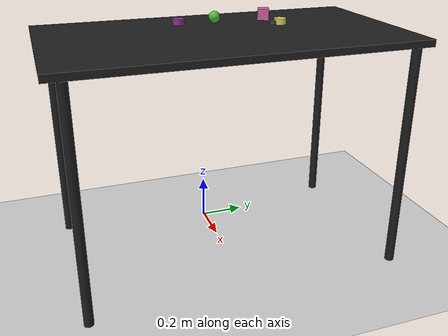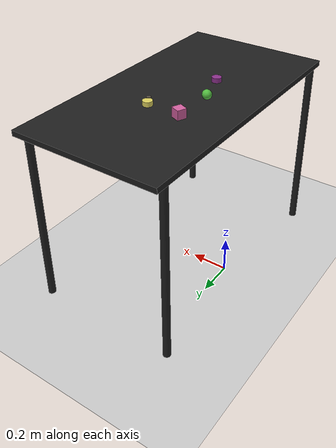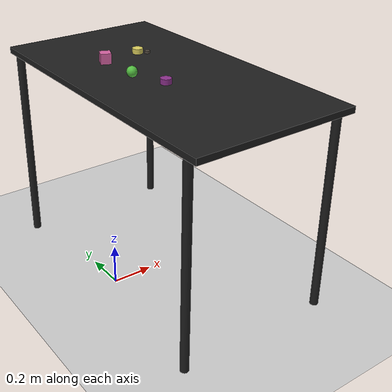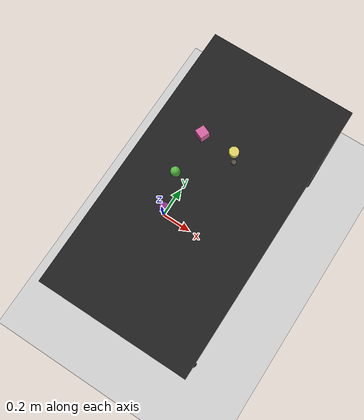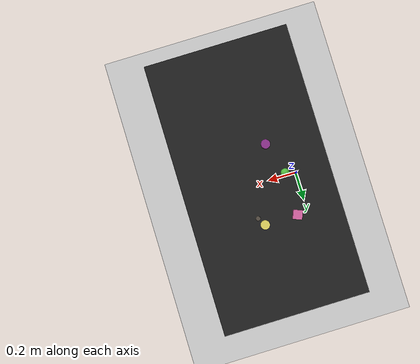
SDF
<?xml version="1.0" ?>
<sdf version="1.6">
  <world name="arm_world">
    <plugin filename="gz-sim-physics-system" name="gz::sim::systems::Physics">
      <engine>
        <filename>libgz-physics-bullet-featherstone-plugin.so</filename>
      </engine>
    </plugin>
    <plugin filename="gz-sim-user-commands-system" name="gz::sim::systems::UserCommands"/>
    <plugin filename="gz-sim-scene-broadcaster-system" name="gz::sim::systems::SceneBroadcaster"/>
    <plugin filename="gz-sim-sensors-system" name="gz::sim::systems::Sensors">
      <render_engine>ogre2</render_engine>
    </plugin>
    <gravity>0.0 0.0 -9.8</gravity>
    <scene>
      <shadows>false</shadows>
    </scene>
    <gui>
      <camera name="user_camera">
        <pose>0.75 -0.75 1.4 0 0.29 2.21</pose>
      </camera>
    </gui>
    <include>
      <uri>https://fuel.gazebosim.org/1.0/OpenRobotics/models/Sun</uri>
    </include>
    <model name="table">
      <static>true</static>
      <include>
        <uri>model://table</uri>
      </include>
      <pose>0.29 0 0 0 0 1.5708</pose>
    </model>
    <model name="ground_plane">
      <static>true</static>
      <link name="link">
        <collision name="collision">
          <geometry>
            <plane>
              <normal>0 0 1</normal>
            </plane>
          </geometry>
          <surface>
            <friction>
              <ode>
                <mu>1.0</mu>
                <mu2>1.0</mu2>
              </ode>
            </friction>
          </surface>
        </collision>
        <visual name="visual">
          <geometry>
            <plane>
              <normal>0 0 1</normal>
              <size>100 100</size>
            </plane>
          </geometry>
          <material>
            <ambient>0.8 0.8 0.8 1</ambient>
            <diffuse>0.8 0.8 0.8 1</diffuse>
            <specular>0.8 0.8 0.8 1</specular>
          </material>
        </visual>
      </link>
    </model>
    <model name="cylinder_m_0">
      <pose>0.314 0.249 1.05 0 0 3.24</pose>
      <link name="cylinder_m_0_link">
        <inertial>
          <mass>0.05</mass>
          <inertia>
            <ixx>2.04e-7</ixx>
            <iyy>2.04e-7</iyy>
            <izz>3.9e-8</izz>
            <ixy>0</ixy>
            <ixz>0</ixz>
            <iyz>0</iyz>
          </inertia>
        </inertial>
        <collision name="cylinder_m_0_collision">
          <geometry>
            <cylinder>
              <radius>0.025</radius>
              <length>0.025</length>
            </cylinder>
          </geometry>
          <surface>
            <friction>
              <ode>
                <mu>0.8</mu>
                <mu2>0.8</mu2>
                <fdir1>0 0 1</fdir1>
                <slip1>0.001</slip1>
                <slip2>0.001</slip2>
              </ode>
              <torsional>
                <coefficient>0.1</coefficient>
                <surface_radius>0.015</surface_radius>
                <use_patch_radius>true</use_patch_radius>
              </torsional>
            </friction>
            <contact>
              <ode>
                <kp>1e5</kp>
                <kd>10</kd>
                <max_vel>0.1</max_vel>
                <min_depth>0.001</min_depth>
                <soft_cfm>0.01</soft_cfm>
                <soft_erp>0.2</soft_erp>
              </ode>
            </contact>
            <bounce>
              <restitution_coefficient>0.2</restitution_coefficient>
              <threshold>0.01</threshold>
            </bounce>
          </surface>
        </collision>
        <visual name="cylinder_m_0_visual">
          <geometry>
            <cylinder>
              <radius>0.025</radius>
              <length>0.025</length>
            </cylinder>
          </geometry>
          <material>
            <ambient>0.87 0.82 0.37 1</ambient>
            <diffuse>0.87 0.82 0.37 1</diffuse>
          </material>
        </visual>
        <velocity_decay>
          <linear>1</linear>
          <angular>1</angular>
        </velocity_decay>
      </link>
    </model>
    <model name="cube_m_1">
      <pose>0.136 0.247 1.05 0 0 2.75</pose>
      <link name="cube_m_1_link">
        <inertial>
          <mass>0.05</mass>
          <inertia>
            <ixx>2.04e-7</ixx>
            <iyy>2.04e-7</iyy>
            <izz>3.9e-8</izz>
            <ixy>0</ixy>
            <ixz>0</ixz>
            <iyz>0</iyz>
          </inertia>
        </inertial>
        <collision name="cube_m_1_collision">
          <geometry>
            <box>
              <size>0.05 0.05 0.05</size>
            </box>
          </geometry>
          <surface>
            <friction>
              <ode>
                <mu>0.8</mu>
                <mu2>0.8</mu2>
                <fdir1>0 0 1</fdir1>
                <slip1>0.001</slip1>
                <slip2>0.001</slip2>
              </ode>
              <torsional>
                <coefficient>0.1</coefficient>
                <surface_radius>0.015</surface_radius>
                <use_patch_radius>true</use_patch_radius>
              </torsional>
            </friction>
            <contact>
              <ode>
                <kp>1e5</kp>
                <kd>10</kd>
                <max_vel>0.1</max_vel>
                <min_depth>0.001</min_depth>
                <soft_cfm>0.01</soft_cfm>
                <soft_erp>0.2</soft_erp>
              </ode>
            </contact>
            <bounce>
              <restitution_coefficient>0.2</restitution_coefficient>
              <threshold>0.01</threshold>
            </bounce>
          </surface>
        </collision>
        <visual name="cube_m_1_visual">
          <geometry>
            <box>
              <size>0.05 0.05 0.05</size>
            </box>
          </geometry>
          <material>
            <ambient>0.83 0.38 0.63 1</ambient>
            <diffuse>0.83 0.38 0.63 1</diffuse>
          </material>
        </visual>
        <velocity_decay>
          <linear>1</linear>
          <angular>1</angular>
        </velocity_decay>
      </link>
    </model>
    <model name="sphere_m_2">
      <pose>0.133 0.018 1.05 0 0 2.9</pose>
      <link name="sphere_m_2_link">
        <inertial>
          <mass>0.05</mass>
          <inertia>
            <ixx>2.04e-7</ixx>
            <iyy>2.04e-7</iyy>
            <izz>3.9e-8</izz>
            <ixy>0</ixy>
            <ixz>0</ixz>
            <iyz>0</iyz>
          </inertia>
        </inertial>
        <collision name="sphere_m_2_collision">
          <geometry>
            <sphere>
              <radius>0.025</radius>
            </sphere>
          </geometry>
          <surface>
            <friction>
              <ode>
                <mu>0.8</mu>
                <mu2>0.8</mu2>
                <fdir1>0 0 1</fdir1>
                <slip1>0.001</slip1>
                <slip2>0.001</slip2>
              </ode>
              <torsional>
                <coefficient>0.1</coefficient>
                <surface_radius>0.015</surface_radius>
                <use_patch_radius>true</use_patch_radius>
              </torsional>
            </friction>
            <contact>
              <ode>
                <kp>1e5</kp>
                <kd>10</kd>
                <max_vel>0.1</max_vel>
                <min_depth>0.001</min_depth>
                <soft_cfm>0.01</soft_cfm>
                <soft_erp>0.2</soft_erp>
              </ode>
            </contact>
            <bounce>
              <restitution_coefficient>0.2</restitution_coefficient>
              <threshold>0.01</threshold>
            </bounce>
          </surface>
        </collision>
        <visual name="sphere_m_2_visual">
          <geometry>
            <sphere>
              <radius>0.025</radius>
            </sphere>
          </geometry>
          <material>
            <ambient>0.32 0.73 0.25 1</ambient>
            <diffuse>0.32 0.73 0.25 1</diffuse>
          </material>
        </visual>
        <velocity_decay>
          <linear>1</linear>
          <angular>1</angular>
        </velocity_decay>
      </link>
    </model>
    <model name="cylinder_m_3">
      <pose>0.188 -0.158 1.05 0 0 5.79</pose>
      <link name="cylinder_m_3_link">
        <inertial>
          <mass>0.05</mass>
          <inertia>
            <ixx>2.04e-7</ixx>
            <iyy>2.04e-7</iyy>
            <izz>3.9e-8</izz>
            <ixy>0</ixy>
            <ixz>0</ixz>
            <iyz>0</iyz>
          </inertia>
        </inertial>
        <collision name="cylinder_m_3_collision">
          <geometry>
            <cylinder>
              <radius>0.025</radius>
              <length>0.025</length>
            </cylinder>
          </geometry>
          <surface>
            <friction>
              <ode>
                <mu>0.8</mu>
                <mu2>0.8</mu2>
                <fdir1>0 0 1</fdir1>
                <slip1>0.001</slip1>
                <slip2>0.001</slip2>
              </ode>
              <torsional>
                <coefficient>0.1</coefficient>
                <surface_radius>0.015</surface_radius>
                <use_patch_radius>true</use_patch_radius>
              </torsional>
            </friction>
            <contact>
              <ode>
                <kp>1e5</kp>
                <kd>10</kd>
                <max_vel>0.1</max_vel>
                <min_depth>0.001</min_depth>
                <soft_cfm>0.01</soft_cfm>
                <soft_erp>0.2</soft_erp>
              </ode>
            </contact>
            <bounce>
              <restitution_coefficient>0.2</restitution_coefficient>
              <threshold>0.01</threshold>
            </bounce>
          </surface>
        </collision>
        <visual name="cylinder_m_3_visual">
          <geometry>
            <cylinder>
              <radius>0.025</radius>
              <length>0.025</length>
            </cylinder>
          </geometry>
          <material>
            <ambient>0.55 0.19 0.55 1</ambient>
            <diffuse>0.55 0.19 0.55 1</diffuse>
          </material>
        </visual>
        <velocity_decay>
          <linear>1</linear>
          <angular>1</angular>
        </velocity_decay>
      </link>
    </model>
    <model name="cylinder_s_4">
      <pose>0.34 0.206 1.05 0 0 0.18</pose>
      <link name="cylinder_s_4_link">
        <inertial>
          <mass>0.05</mass>
          <inertia>
            <ixx>2.04e-7</ixx>
            <iyy>2.04e-7</iyy>
            <izz>3.9e-8</izz>
            <ixy>0</ixy>
            <ixz>0</ixz>
            <iyz>0</iyz>
          </inertia>
        </inertial>
        <collision name="cylinder_s_4_collision">
          <geometry>
            <cylinder>
              <radius>0.0125</radius>
              <length>0.0125</length>
            </cylinder>
          </geometry>
          <surface>
            <friction>
              <ode>
                <mu>0.8</mu>
                <mu2>0.8</mu2>
                <fdir1>0 0 1</fdir1>
                <slip1>0.001</slip1>
                <slip2>0.001</slip2>
              </ode>
              <torsional>
                <coefficient>0.1</coefficient>
                <surface_radius>0.015</surface_radius>
                <use_patch_radius>true</use_patch_radius>
              </torsional>
            </friction>
            <contact>
              <ode>
                <kp>1e5</kp>
                <kd>10</kd>
                <max_vel>0.1</max_vel>
                <min_depth>0.001</min_depth>
                <soft_cfm>0.01</soft_cfm>
                <soft_erp>0.2</soft_erp>
              </ode>
            </contact>
            <bounce>
              <restitution_coefficient>0.2</restitution_coefficient>
              <threshold>0.01</threshold>
            </bounce>
          </surface>
        </collision>
        <visual name="cylinder_s_4_visual">
          <geometry>
            <cylinder>
              <radius>0.0125</radius>
              <length>0.0125</length>
            </cylinder>
          </geometry>
          <material>
            <ambient>0.32 0.29 0.25 1</ambient>
            <diffuse>0.32 0.29 0.25 1</diffuse>
          </material>
        </visual>
        <velocity_decay>
          <linear>1</linear>
          <angular>1</angular>
        </velocity_decay>
      </link>
    </model>
  </world>
</sdf>

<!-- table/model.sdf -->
<sdf version="1.5">
  <model name="table">
    <static>true</static>
    <link name="link">
      <collision name="surface">
        <pose>0 0 1.0 0 0 0</pose>
        <geometry>
          <box>
            <size>1.5 0.8 0.03</size>
          </box>
        </geometry>
        <surface>
          <friction>
            <ode>
              <mu>0.6</mu>
              <mu2>0.6</mu2>
            </ode>
          </friction>
        </surface>
      </collision>
      <visual name="surface">
        <pose>0 0 1.0 0 0 0</pose>
        <geometry>
          <box>
            <size>1.5 0.8 0.03</size>
          </box>
        </geometry>
        <material>
          <script>
            <uri>file://media/materials/scripts/gazebo.material</uri>
            <name>Gazebo/Black</name>
          </script>
        </material>
      </visual>
      <collision name="front_left_leg">
        <pose>0.68 0.38 0.5 0 0 0</pose>
        <geometry>
          <cylinder>
            <radius>0.02</radius>
            <length>1.0</length>
          </cylinder>
        </geometry>
      </collision>
      <visual name="front_left_leg">
        <pose>0.68 0.38 0.5 0 0 0</pose>
        <geometry>
          <cylinder>
            <radius>0.02</radius>
            <length>1.0</length>
          </cylinder>
        </geometry>
        <material>
          <script>
            <uri>file://media/materials/scripts/gazebo.material</uri>
            <name>Gazebo/Black</name>
          </script>
        </material>
      </visual>
      <collision name="front_right_leg">
        <pose>0.68 -0.38 0.5 0 0 0</pose>
        <geometry>
          <cylinder>
            <radius>0.02</radius>
            <length>1.0</length>
          </cylinder>
        </geometry>
      </collision>
      <visual name="front_right_leg">
        <pose>0.68 -0.38 0.5 0 0 0</pose>
        <geometry>
          <cylinder>
            <radius>0.02</radius>
            <length>1.0</length>
          </cylinder>
        </geometry>
        <material>
          <script>
            <uri>file://media/materials/scripts/gazebo.material</uri>
            <name>Gazebo/Black</name>
          </script>
        </material>
      </visual>
      <collision name="back_right_leg">
        <pose>-0.68 -0.38 0.5 0 0 0</pose>
        <geometry>
          <cylinder>
            <radius>0.02</radius>
            <length>1.0</length>
          </cylinder>
        </geometry>
      </collision>
      <visual name="back_right_leg">
        <pose>-0.68 -0.38 0.5 0 0 0</pose>
        <geometry>
          <cylinder>
            <radius>0.02</radius>
            <length>1.0</length>
          </cylinder>
        </geometry>
        <material>
          <script>
            <uri>file://media/materials/scripts/gazebo.material</uri>
            <name>Gazebo/Black</name>
          </script>
        </material>
      </visual>
      <collision name="back_left_leg">
        <pose>-0.68 0.38 0.5 0 0 0</pose>
        <geometry>
          <cylinder>
            <radius>0.02</radius>
            <length>1.0</length>
          </cylinder>
        </geometry>
      </collision>
      <visual name="back_left_leg">
        <pose>-0.68 0.38 0.5 0 0 0</pose>
        <geometry>
          <cylinder>
            <radius>0.02</radius>
            <length>1.0</length>
          </cylinder>
        </geometry>
        <material>
          <script>
            <uri>file://media/materials/scripts/gazebo.material</uri>
            <name>Gazebo/Black</name>
          </script>
        </material>
      </visual>
    </link>
  </model>
</sdf>
